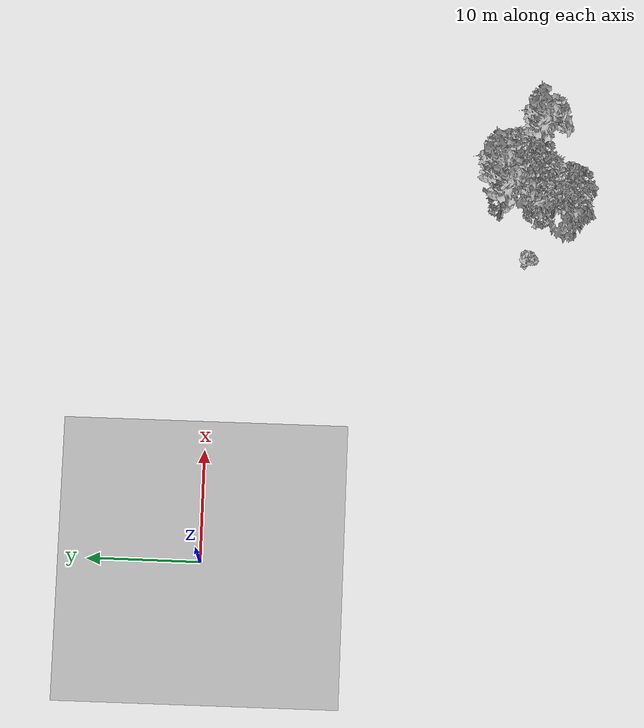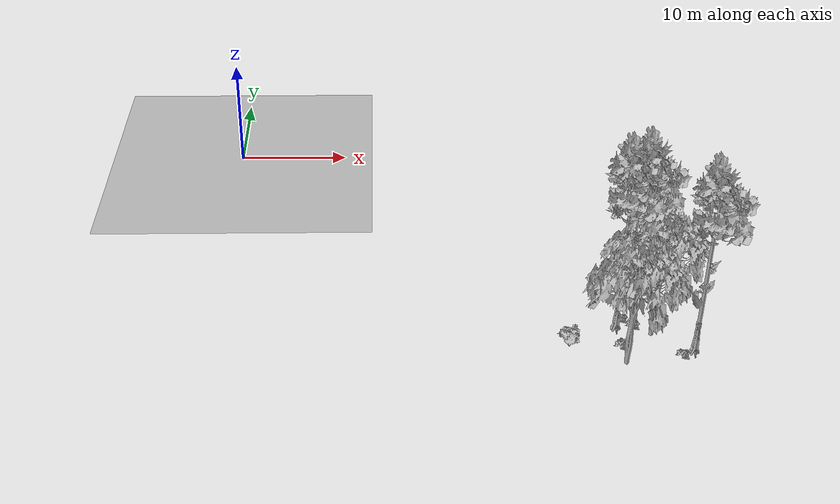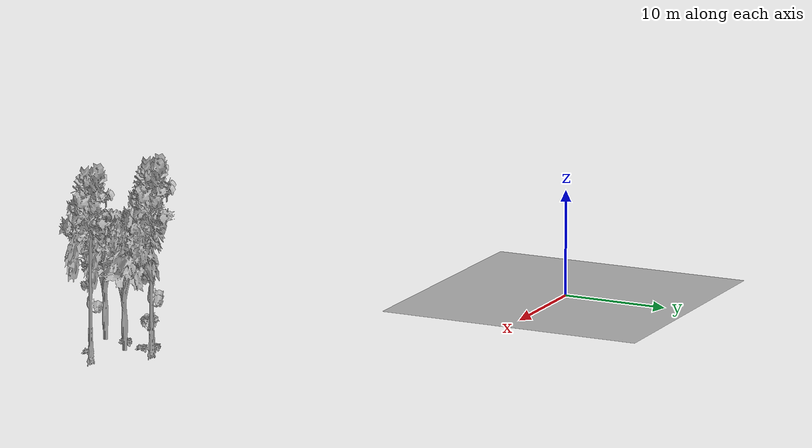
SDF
<sdf version="1.7">
 <world name="default">
  <model name="ground_plane">
   <static>1</static>
   <link name="link">
    <collision name="collision">
     <pose>-50 0 0 0 -0 0</pose>
     <geometry><plane><normal>0 0 1</normal><size>80 80</size></plane></geometry>
     <surface><contact><ode><min_depth>0.01</min_depth><max_vel>0</max_vel></ode></contact></surface>
    </collision>
    <visual name="grass">
     <cast_shadows>0</cast_shadows>
     <geometry>
      <mesh>
       <scale>0.46714285714285714 0.46714285714285714 0.1</scale>
       <uri>file://grass_plane/meshes/grass_plane.dae</uri>
      </mesh>
     </geometry>
    </visual>
   </link>
  </model>
  <model name="Tree 220">
   <static>1</static>
   <pose>32.354507912110904 -25.61032346211551 0 1.57079 -0 0</pose>
   <link name="link">
    <collision name="collision">
     <geometry><mesh><scale>3.5 5 3.5</scale><uri>model://tree_9/meshes/tree_9.obj</uri></mesh></geometry>
    </collision>
    <visual name="visual">
     <geometry><mesh><scale>3.5 5 3.5</scale><uri>model://tree_9/meshes/tree_9.obj</uri></mesh></geometry>
    </visual>
   </link>
  </model>
  <model name="Tree 301">
   <static>1</static>
   <pose>33.90863759655261 -24.81584425448358 0 1.57079 -0 0</pose>
   <link name="link">
    <collision name="collision">
     <geometry><mesh><scale>3.5 5 3.5</scale><uri>model://tree_9/meshes/tree_9.obj</uri></mesh></geometry>
    </collision>
    <visual name="visual">
     <geometry><mesh><scale>3.5 5 3.5</scale><uri>model://tree_9/meshes/tree_9.obj</uri></mesh></geometry>
    </visual>
   </link>
  </model>
  <model name="Tree 492">
   <static>1</static>
   <pose>38.107740308943775 -28.596956623847063 0 1.57079 -0 0</pose>
   <link name="link">
    <collision name="collision">
     <geometry><mesh><scale>3.5 5 3.5</scale><uri>model://tree_9/meshes/tree_9.obj</uri></mesh></geometry>
    </collision>
    <visual name="visual">
     <geometry><mesh><scale>3.5 5 3.5</scale><uri>model://tree_9/meshes/tree_9.obj</uri></mesh></geometry>
    </visual>
   </link>
  </model>
  <model name="Tree 517">
   <static>1</static>
   <pose>32.31692756062063 -30.364065380042902 0 1.57079 -0 0</pose>
   <link name="link">
    <collision name="collision">
     <geometry><mesh><scale>3.5 5 3.5</scale><uri>model://tree_2/meshes/tree_2.obj</uri></mesh></geometry>
    </collision>
    <visual name="visual">
     <geometry><mesh><scale>3.5 5 3.5</scale><uri>model://tree_2/meshes/tree_2.obj</uri></mesh></geometry>
    </visual>
   </link>
  </model>
  <model name="Tree 567">
   <static>1</static>
   <pose>34.83936451934893 -26.972374963528345 0 1.57079 -0 0</pose>
   <link name="link">
    <collision name="collision">
     <geometry><mesh><scale>3.5 5 3.5</scale><uri>model://tree_2/meshes/tree_2.obj</uri></mesh></geometry>
    </collision>
    <visual name="visual">
     <geometry><mesh><scale>3.5 5 3.5</scale><uri>model://tree_2/meshes/tree_2.obj</uri></mesh></geometry>
    </visual>
   </link>
  </model>
  <model name="Bush 20">
   <static>1</static>
   <pose>32.32842629939765 -28.372565414995414 0 1.57079 -0 0</pose>
   <link name="link">
    <collision name="collision">
     <geometry><mesh><scale>2 2 2</scale><uri>model://bush_2/meshes/bush_2.obj</uri></mesh></geometry>
     <surface><contact><collide_without_contact>false</collide_without_contact></contact></surface>
    </collision>
    <visual name="visual">
     <geometry><mesh><scale>2 2 2</scale><uri>model://bush_2/meshes/bush_2.obj</uri></mesh></geometry>
    </visual>
   </link>
  </model>
  <model name="Bush 212">
   <static>1</static>
   <pose>36.984374339036776 -29.504020068694594 0 1.57079 -0 0</pose>
   <link name="link">
    <collision name="collision">
     <geometry><mesh><scale>2 2 2</scale><uri>model://bush_2/meshes/bush_2.obj</uri></mesh></geometry>
     <surface><contact><collide_without_contact>false</collide_without_contact></contact></surface>
    </collision>
    <visual name="visual">
     <geometry><mesh><scale>2 2 2</scale><uri>model://bush_2/meshes/bush_2.obj</uri></mesh></geometry>
    </visual>
   </link>
  </model>
  <model name="Bush 221">
   <static>1</static>
   <pose>33.678676498449605 -25.89175014477612 0 1.57079 -0 0</pose>
   <link name="link">
    <collision name="collision">
     <geometry><mesh><scale>2 2 2</scale><uri>model://bush_2/meshes/bush_2.obj</uri></mesh></geometry>
     <surface><contact><collide_without_contact>false</collide_without_contact></contact></surface>
    </collision>
    <visual name="visual">
     <geometry><mesh><scale>2 2 2</scale><uri>model://bush_2/meshes/bush_2.obj</uri></mesh></geometry>
    </visual>
   </link>
  </model>
  <model name="Bush 487">
   <static>1</static>
   <pose>32.84802370875549 -25.04102553252651 0 1.57079 -0 0</pose>
   <link name="link">
    <collision name="collision">
     <geometry><mesh><scale>2 2 2</scale><uri>model://bush_2/meshes/bush_2.obj</uri></mesh></geometry>
     <surface><contact><collide_without_contact>false</collide_without_contact></contact></surface>
    </collision>
    <visual name="visual">
     <geometry><mesh><scale>2 2 2</scale><uri>model://bush_2/meshes/bush_2.obj</uri></mesh></geometry>
    </visual>
   </link>
  </model>
  <model name="Bush 576">
   <static>1</static>
   <pose>32.53663668796874 -28.140822786946025 0 1.57079 -0 0</pose>
   <link name="link">
    <collision name="collision">
     <geometry><mesh><scale>2 2 2</scale><uri>model://bush_2/meshes/bush_2.obj</uri></mesh></geometry>
     <surface><contact><collide_without_contact>false</collide_without_contact></contact></surface>
    </collision>
    <visual name="visual">
     <geometry><mesh><scale>2 2 2</scale><uri>model://bush_2/meshes/bush_2.obj</uri></mesh></geometry>
    </visual>
   </link>
  </model>
  <model name="Bush 636">
   <static>1</static>
   <pose>28.20606821065674 -28.339971499388348 0 1.57079 -0 0</pose>
   <link name="link">
    <collision name="collision">
     <geometry><mesh><scale>2 2 2</scale><uri>model://bush_1/meshes/bush_1.obj</uri></mesh></geometry>
     <surface><contact><collide_without_contact>false</collide_without_contact></contact></surface>
    </collision>
    <visual name="visual">
     <geometry><mesh><scale>2 2 2</scale><uri>model://bush_1/meshes/bush_1.obj</uri></mesh></geometry>
    </visual>
   </link>
  </model>
 </world>
</sdf>
